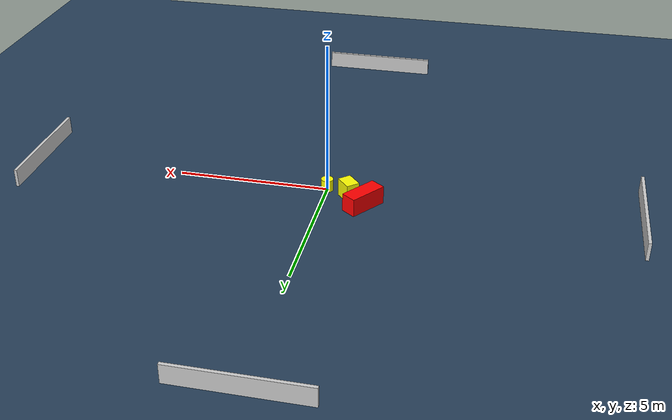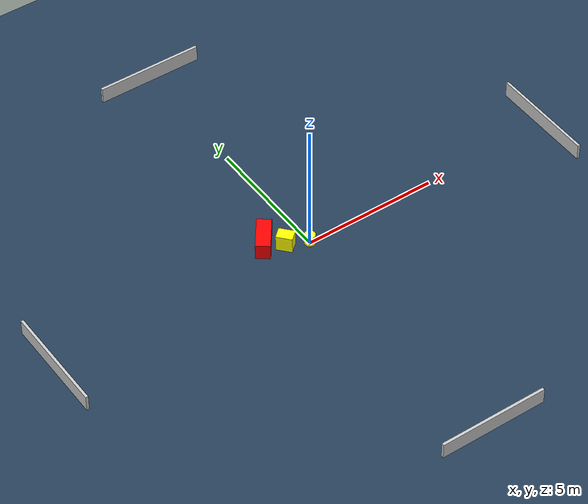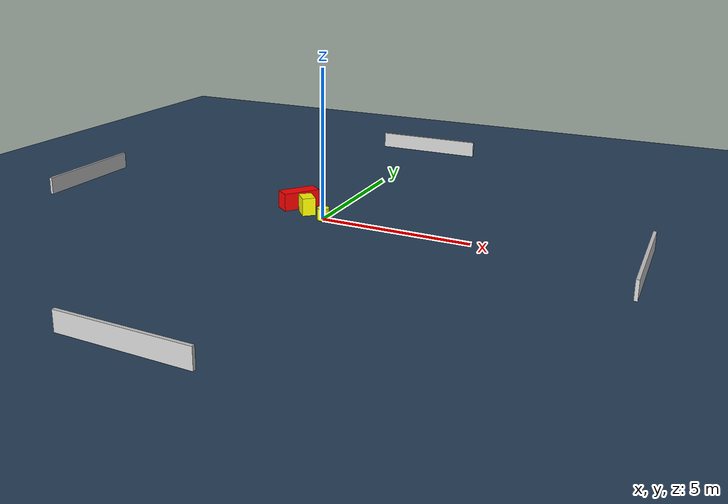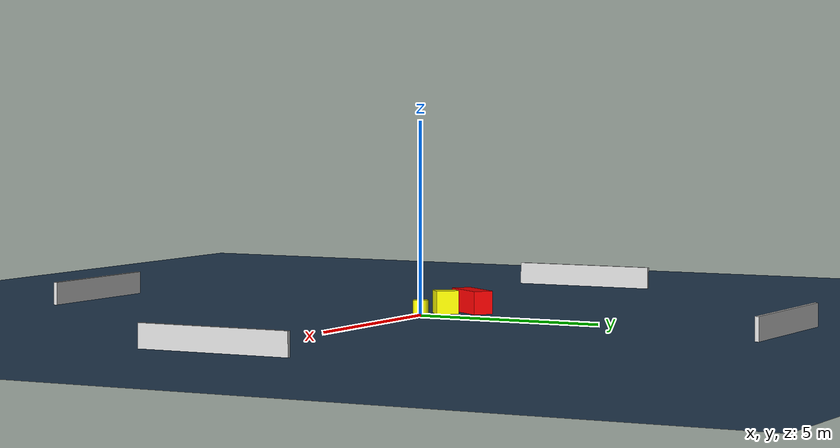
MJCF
<?xml version="1.0" ?>
<mujoco model="generated_environment">
  <option timestep="0.01" integrator="RK4" cone="elliptic"/>
  <default>
    <geom density="1"/>
  </default>
  <asset>
    <texture builtin="gradient" height="3072" name="skybox" rgb1="0.3 0.5 0.7" rgb2="0 0 0" type="skybox" width="512"/>
    <texture builtin="checker" height="300" name="groundplane" rgb1="0.2 0.3 0.4" rgb2="0.1 0.2 0.3" type="2d" width="300"/>
    <material name="groundplane" reflectance="0.2" texrepeat="5 5" texture="groundplane"/>
  </asset>
  <worldbody>
    <light dir="0 0 -1" directional="true" pos="0 0 1.5"/>
    <geom condim="3" friction="0.5 0.005 0.001" material="groundplane" name="floor" pos="0 0 0" size="0 0 0.05" type="plane"/>
    <body name="walls">
      <geom name="wall_1" condim="4" pos="-10.0 0.0 0.3" rgba="0.800000011920929 0.800000011920929 0.800000011920929 1.0" size="0.05 2.0 0.3" type="box"/>
      <geom name="wall_2" condim="4" pos="10.0 0.0 0.3" rgba="0.800000011920929 0.800000011920929 0.800000011920929 1.0" size="0.05 2.0 0.3" type="box"/>
      <geom name="wall_3" condim="4" pos="0.0 -10.0 0.3" rgba="0.800000011920929 0.800000011920929 0.800000011920929 1.0" size="2.0 0.05 0.3" type="box"/>
      <geom name="wall_4" condim="4" pos="0.0 10.0 0.3" rgba="0.800000011920929 0.800000011920929 0.800000011920929 1.0" size="2.0 0.05 0.3" type="box"/>
    </body>
    <body name="robot">
      <joint name="joint_x" type="slide" pos="0 0 0" axis="1 0 0"/>
      <joint name="joint_y" type="slide" pos="0 0 0" axis="0 1 0"/>
      <geom name="robot" type="cylinder" pos="0.0 0.0 0.2" size="0.2 0.2 0.0" mass="5.0" friction="1.0 0.005 0.0001" condim="4" rgba="1.0 1.0 0.0 1.0"/>
    </body>
    <body name="obstacle_1_movable">
      <geom name="obstacle_1_movable" condim="4" pos="-0.7740050743094281 0.3268069367702988 0.3" euler="0 0 311.24490499111783" friction="0.0 0.005 0.001" rgba="1.0 1.0 0.0 1.0" size="0.29273581396500264 0.22162670485805386 0.3" type="box" mass="0.1"/>
      <joint type="free"/>
    </body>
    <body name="obstacle_2_static">
      <geom name="obstacle_2_static" condim="4" pos="-1.3395458301176557 0.8059090405002026 0.3" euler="0 0 233.4214605150455" friction="0.0 0.005 0.001" rgba="1.0 0.0 0.0 1.0" size="0.6440588746058596 0.26190682305208646 0.3" type="box"/>
    </body>
  </worldbody>
  <actuator>
    <motor name="actuator_x" joint="joint_x" gear="1" ctrlrange="-1 1"/>
    <motor name="actuator_y" joint="joint_y" gear="1" ctrlrange="-1 1"/>
  </actuator>
</mujoco>
